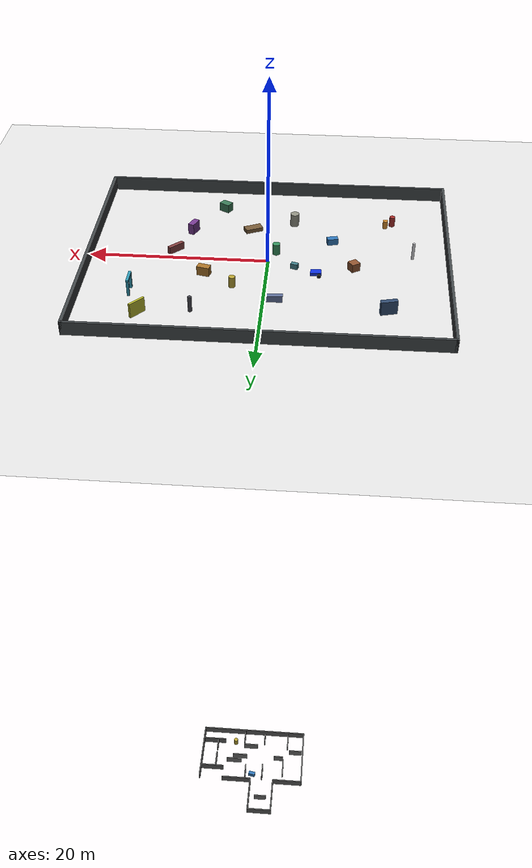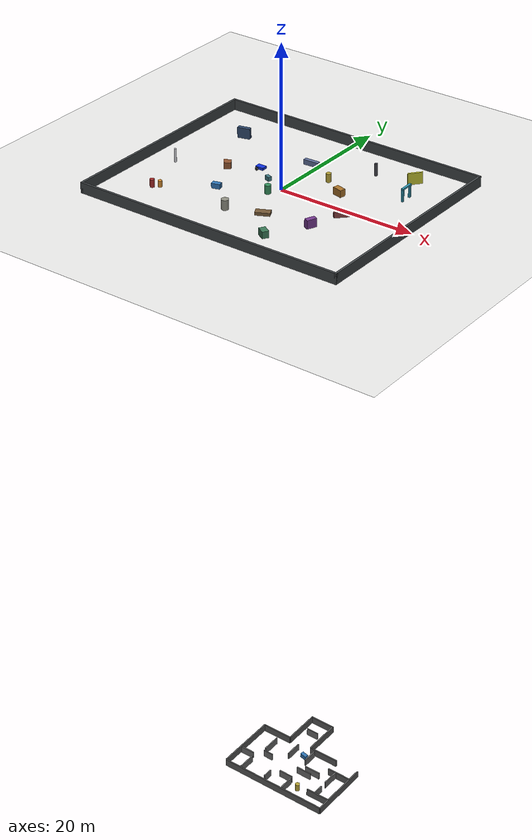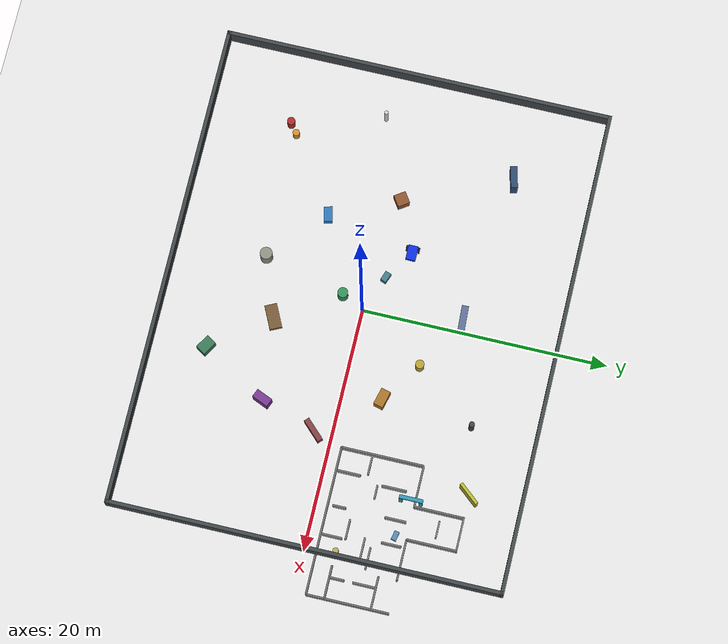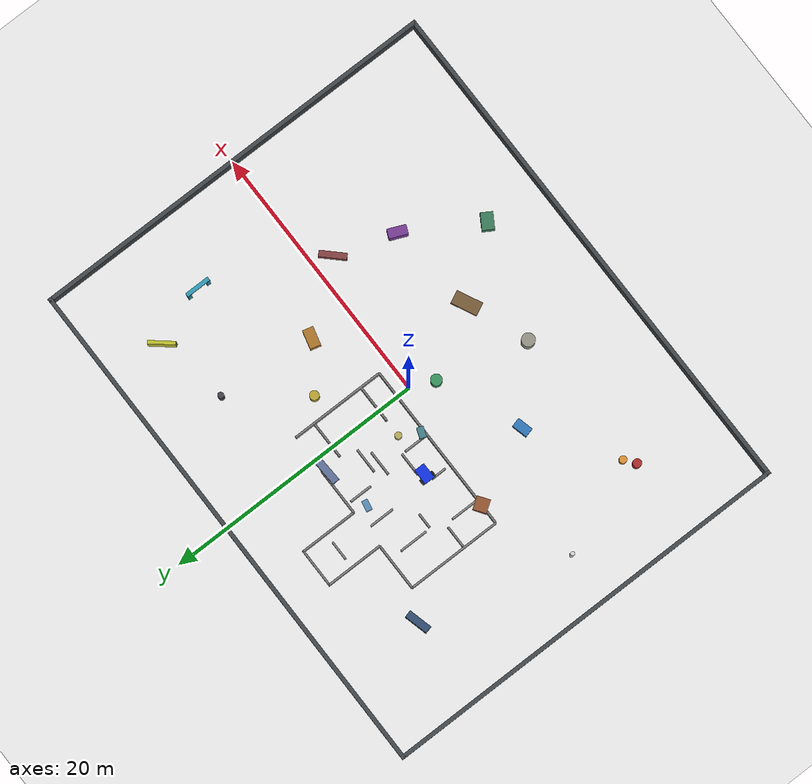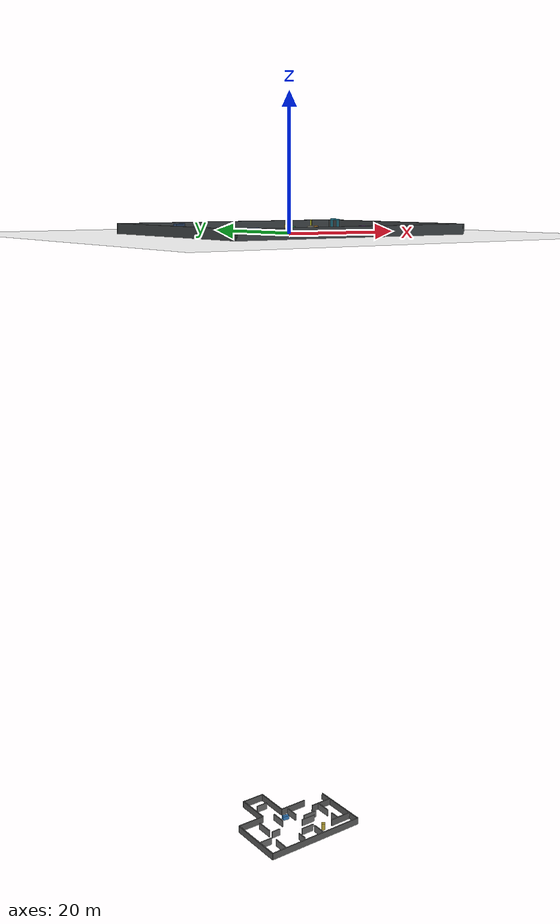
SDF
<?xml version="1.0"?>
<sdf version="1.10">
  <world name="building_slam_world">
    <physics name="1ms" type="ignored">
      <max_step_size>0.001</max_step_size>
      <real_time_factor>1.0</real_time_factor>
    </physics>

    <plugin filename="gz-sim-physics-system" name="gz::sim::systems::Physics"/>
    <plugin filename="gz-sim-user-commands-system" name="gz::sim::systems::UserCommands"/>
    <plugin filename="gz-sim-scene-broadcaster-system" name="gz::sim::systems::SceneBroadcaster"/>
    <plugin filename="gz-sim-sensors-system" name="gz::sim::systems::Sensors">
      <render_engine>ogre2</render_engine>
    </plugin>
    <plugin filename="gz-sim-imu-system" name="gz::sim::systems::Imu"/>

    <light type="directional" name="sun">
      <cast_shadows>true</cast_shadows>
      <pose>0 0 10 0 0 0</pose>
      <diffuse>0.8 0.8 0.8 1</diffuse>
      <specular>0.2 0.2 0.2 1</specular>
      <attenuation>
        <range>1000</range>
        <constant>0.9</constant>
        <linear>0.01</linear>
        <quadratic>0.001</quadratic>
      </attenuation>
      <direction>-0.5 0.1 -0.9</direction>
    </light>

    <model name="ground_plane">
      <static>true</static>
      <link name="link">
        <collision name="collision">
          <geometry>
            <plane>
              <normal>0 0 1</normal>
              <size>40 32</size>
            </plane>
          </geometry>
        </collision>
        <visual name="visual">
          <geometry>
            <plane>
              <normal>0 0 1</normal>
              <size>40 32</size>
            </plane>
          </geometry>
          <material>
            <ambient>0.72 0.74 0.72 1</ambient>
            <diffuse>0.72 0.74 0.72 1</diffuse>
            <specular>0.1 0.1 0.1 1</specular>
          </material>
        </visual>
      </link>
    </model>

    <!-- Perimeter wall enclosing the full environment. -->
    <model name="environment_perimeter_wall">
      <static>true</static>

      <link name="perimeter_north_wall">
        <pose>0 15.85 0.75 0 0 0</pose>
        <collision name="collision"><geometry><box><size>40.0 0.3 1.5</size></box></geometry></collision>
        <visual name="visual"><geometry><box><size>40.0 0.3 1.5</size></box></geometry><material><ambient>0.25 0.27 0.28 1</ambient><diffuse>0.25 0.27 0.28 1</diffuse></material></visual>
      </link>
      <link name="perimeter_south_wall">
        <pose>0 -15.85 0.75 0 0 0</pose>
        <collision name="collision"><geometry><box><size>40.0 0.3 1.5</size></box></geometry></collision>
        <visual name="visual"><geometry><box><size>40.0 0.3 1.5</size></box></geometry><material><ambient>0.25 0.27 0.28 1</ambient><diffuse>0.25 0.27 0.28 1</diffuse></material></visual>
      </link>
      <link name="perimeter_west_wall">
        <pose>-19.85 0 0.75 0 0 0</pose>
        <collision name="collision"><geometry><box><size>0.3 32.0 1.5</size></box></geometry></collision>
        <visual name="visual"><geometry><box><size>0.3 32.0 1.5</size></box></geometry><material><ambient>0.25 0.27 0.28 1</ambient><diffuse>0.25 0.27 0.28 1</diffuse></material></visual>
      </link>
      <link name="perimeter_east_wall">
        <pose>19.85 0 0.75 0 0 0</pose>
        <collision name="collision"><geometry><box><size>0.3 32.0 1.5</size></box></geometry></collision>
        <visual name="visual"><geometry><box><size>0.3 32.0 1.5</size></box></geometry><material><ambient>0.25 0.27 0.28 1</ambient><diffuse>0.25 0.27 0.28 1</diffuse></material></visual>
      </link>
    </model>

    <!-- Dense interior floor plan kept below the floor so only the perimeter bounds the map. -->
    <model name="building_floor_plan">
      <pose>0 0 -100 0 0 0</pose>
      <static>true</static>

      <!-- Outer walls -->
      <link name="north_wall_left">
        <pose>-4.5 5 0.6 0 0 0</pose>
        <collision name="collision"><geometry><box><size>5.0 0.2 1.2</size></box></geometry></collision>
        <visual name="visual"><geometry><box><size>5.0 0.2 1.2</size></box></geometry><material><ambient>0.35 0.35 0.35 1</ambient><diffuse>0.35 0.35 0.35 1</diffuse></material></visual>
      </link>
      <link name="north_wall_right">
        <pose>4.5 5 0.6 0 0 0</pose>
        <collision name="collision"><geometry><box><size>5.0 0.2 1.2</size></box></geometry></collision>
        <visual name="visual"><geometry><box><size>5.0 0.2 1.2</size></box></geometry><material><ambient>0.35 0.35 0.35 1</ambient><diffuse>0.35 0.35 0.35 1</diffuse></material></visual>
      </link>
      <link name="south_wall">
        <pose>2 -5 0.6 0 0 0</pose>
        <collision name="collision"><geometry><box><size>18 0.2 1.2</size></box></geometry></collision>
        <visual name="visual"><geometry><box><size>18 0.2 1.2</size></box></geometry><material><ambient>0.35 0.35 0.35 1</ambient><diffuse>0.35 0.35 0.35 1</diffuse></material></visual>
      </link>
      <link name="west_wall">
        <pose>-7 0 0.6 0 0 0</pose>
        <collision name="collision"><geometry><box><size>0.2 10 1.2</size></box></geometry></collision>
        <visual name="visual"><geometry><box><size>0.2 10 1.2</size></box></geometry><material><ambient>0.35 0.35 0.35 1</ambient><diffuse>0.35 0.35 0.35 1</diffuse></material></visual>
      </link>
      <link name="east_wall">
        <pose>11 0 0.6 0 0 0</pose>
        <collision name="collision"><geometry><box><size>0.2 10 1.2</size></box></geometry></collision>
        <visual name="visual"><geometry><box><size>0.2 10 1.2</size></box></geometry><material><ambient>0.35 0.35 0.35 1</ambient><diffuse>0.35 0.35 0.35 1</diffuse></material></visual>
      </link>
      <link name="north_extension_west_wall">
        <pose>-2.0 8.0 0.6 0 0 0</pose>
        <collision name="collision"><geometry><box><size>0.2 6.0 1.2</size></box></geometry></collision>
        <visual name="visual"><geometry><box><size>0.2 6.0 1.2</size></box></geometry><material><ambient>0.35 0.35 0.35 1</ambient><diffuse>0.35 0.35 0.35 1</diffuse></material></visual>
      </link>
      <link name="north_extension_east_wall">
        <pose>2.0 8.0 0.6 0 0 0</pose>
        <collision name="collision"><geometry><box><size>0.2 6.0 1.2</size></box></geometry></collision>
        <visual name="visual"><geometry><box><size>0.2 6.0 1.2</size></box></geometry><material><ambient>0.35 0.35 0.35 1</ambient><diffuse>0.35 0.35 0.35 1</diffuse></material></visual>
      </link>
      <link name="north_extension_top_wall">
        <pose>0 11 0.6 0 0 0</pose>
        <collision name="collision"><geometry><box><size>4.2 0.2 1.2</size></box></geometry></collision>
        <visual name="visual"><geometry><box><size>4.2 0.2 1.2</size></box></geometry><material><ambient>0.35 0.35 0.35 1</ambient><diffuse>0.35 0.35 0.35 1</diffuse></material></visual>
      </link>
      <link name="east_wing_top_wall">
        <pose>9 2.8 0.6 0 0 0</pose>
        <collision name="collision"><geometry><box><size>4.0 0.2 1.2</size></box></geometry></collision>
        <visual name="visual"><geometry><box><size>4.0 0.2 1.2</size></box></geometry><material><ambient>0.35 0.35 0.35 1</ambient><diffuse>0.35 0.35 0.35 1</diffuse></material></visual>
      </link>
      <link name="east_wing_bottom_wall">
        <pose>9 -2.8 0.6 0 0 0</pose>
        <collision name="collision"><geometry><box><size>4.0 0.2 1.2</size></box></geometry></collision>
        <visual name="visual"><geometry><box><size>4.0 0.2 1.2</size></box></geometry><material><ambient>0.35 0.35 0.35 1</ambient><diffuse>0.35 0.35 0.35 1</diffuse></material></visual>
      </link>

      <!-- Interior rooms and corridors -->
      <link name="left_vertical_room_wall">
        <pose>-3.6 2.2 0.6 0 0 0</pose>
        <collision name="collision"><geometry><box><size>0.18 3.0 1.2</size></box></geometry></collision>
        <visual name="visual"><geometry><box><size>0.18 3.0 1.2</size></box></geometry><material><ambient>0.42 0.42 0.42 1</ambient><diffuse>0.42 0.42 0.42 1</diffuse></material></visual>
      </link>
      <link name="left_room_bottom_wall">
        <pose>-5.7 -1.2 0.6 0 0 0</pose>
        <collision name="collision"><geometry><box><size>2.3 0.18 1.2</size></box></geometry></collision>
        <visual name="visual"><geometry><box><size>2.3 0.18 1.2</size></box></geometry><material><ambient>0.42 0.42 0.42 1</ambient><diffuse>0.42 0.42 0.42 1</diffuse></material></visual>
      </link>
      <link name="center_vertical_wall_upper">
        <pose>0.0 3.2 0.6 0 0 0</pose>
        <collision name="collision"><geometry><box><size>0.18 2.6 1.2</size></box></geometry></collision>
        <visual name="visual"><geometry><box><size>0.18 2.6 1.2</size></box></geometry><material><ambient>0.42 0.42 0.42 1</ambient><diffuse>0.42 0.42 0.42 1</diffuse></material></visual>
      </link>
      <link name="center_vertical_wall_lower">
        <pose>0.0 -3.6 0.6 0 0 0</pose>
        <collision name="collision"><geometry><box><size>0.18 1.6 1.2</size></box></geometry></collision>
        <visual name="visual"><geometry><box><size>0.18 1.6 1.2</size></box></geometry><material><ambient>0.42 0.42 0.42 1</ambient><diffuse>0.42 0.42 0.42 1</diffuse></material></visual>
      </link>
      <link name="middle_horizontal_wall_left">
        <pose>-2.7 0.2 0.6 0 0 0</pose>
        <collision name="collision"><geometry><box><size>1.6 0.18 1.2</size></box></geometry></collision>
        <visual name="visual"><geometry><box><size>1.6 0.18 1.2</size></box></geometry><material><ambient>0.42 0.42 0.42 1</ambient><diffuse>0.42 0.42 0.42 1</diffuse></material></visual>
      </link>
      <link name="middle_horizontal_wall_right">
        <pose>4.2 0.2 0.6 0 0 0</pose>
        <collision name="collision"><geometry><box><size>2.6 0.18 1.2</size></box></geometry></collision>
        <visual name="visual"><geometry><box><size>2.6 0.18 1.2</size></box></geometry><material><ambient>0.42 0.42 0.42 1</ambient><diffuse>0.42 0.42 0.42 1</diffuse></material></visual>
      </link>
      <link name="right_room_wall">
        <pose>3.0 3.4 0.6 0 0 0</pose>
        <collision name="collision"><geometry><box><size>0.18 2.4 1.2</size></box></geometry></collision>
        <visual name="visual"><geometry><box><size>0.18 2.4 1.2</size></box></geometry><material><ambient>0.42 0.42 0.42 1</ambient><diffuse>0.42 0.42 0.42 1</diffuse></material></visual>
      </link>
      <link name="right_room_bottom_wall">
        <pose>5.2 1.1 0.6 0 0 0</pose>
        <collision name="collision"><geometry><box><size>2.6 0.18 1.2</size></box></geometry></collision>
        <visual name="visual"><geometry><box><size>2.6 0.18 1.2</size></box></geometry><material><ambient>0.42 0.42 0.42 1</ambient><diffuse>0.42 0.42 0.42 1</diffuse></material></visual>
      </link>
      <link name="east_wing_divider_top">
        <pose>8.4 1.4 0.6 0 0 0</pose>
        <collision name="collision"><geometry><box><size>0.18 2.8 1.2</size></box></geometry></collision>
        <visual name="visual"><geometry><box><size>0.18 2.8 1.2</size></box></geometry><material><ambient>0.42 0.42 0.42 1</ambient><diffuse>0.42 0.42 0.42 1</diffuse></material></visual>
      </link>
      <link name="east_wing_divider_bottom">
        <pose>8.4 -1.9 0.6 0 0 0</pose>
        <collision name="collision"><geometry><box><size>0.18 1.8 1.2</size></box></geometry></collision>
        <visual name="visual"><geometry><box><size>0.18 1.8 1.2</size></box></geometry><material><ambient>0.42 0.42 0.42 1</ambient><diffuse>0.42 0.42 0.42 1</diffuse></material></visual>
      </link>
      <link name="north_extension_room_wall">
        <pose>0 8.3 0.6 0 0 0</pose>
        <collision name="collision"><geometry><box><size>2.0 0.18 1.2</size></box></geometry></collision>
        <visual name="visual"><geometry><box><size>2.0 0.18 1.2</size></box></geometry><material><ambient>0.42 0.42 0.42 1</ambient><diffuse>0.42 0.42 0.42 1</diffuse></material></visual>
      </link>
      <link name="bottom_room_wall_left">
        <pose>-4.2 -3.4 0.6 0 0 0</pose>
        <collision name="collision"><geometry><box><size>0.18 2.8 1.2</size></box></geometry></collision>
        <visual name="visual"><geometry><box><size>0.18 2.8 1.2</size></box></geometry><material><ambient>0.42 0.42 0.42 1</ambient><diffuse>0.42 0.42 0.42 1</diffuse></material></visual>
      </link>
      <link name="bottom_room_wall_right">
        <pose>3.6 -3.6 0.6 0 0 0</pose>
        <collision name="collision"><geometry><box><size>0.18 2.4 1.2</size></box></geometry></collision>
        <visual name="visual"><geometry><box><size>0.18 2.4 1.2</size></box></geometry><material><ambient>0.42 0.42 0.42 1</ambient><diffuse>0.42 0.42 0.42 1</diffuse></material></visual>
      </link>
      <link name="bottom_corridor_wall">
        <pose>2.4 -2.0 0.6 0 0 0</pose>
        <collision name="collision"><geometry><box><size>2.4 0.18 1.2</size></box></geometry></collision>
        <visual name="visual"><geometry><box><size>2.4 0.18 1.2</size></box></geometry><material><ambient>0.42 0.42 0.42 1</ambient><diffuse>0.42 0.42 0.42 1</diffuse></material></visual>
      </link>

      <!-- Furniture-like obstacles for richer lidar features -->
      <link name="table_block_b">
        <pose>1.8 3.6 0.35 0 0 -0.2</pose>
        <collision name="collision"><geometry><box><size>1.1 0.6 0.7</size></box></geometry></collision>
        <visual name="visual"><geometry><box><size>1.1 0.6 0.7</size></box></geometry><material><ambient>0.18 0.45 0.7 1</ambient><diffuse>0.18 0.45 0.7 1</diffuse></material></visual>
      </link>
      <link name="pillar_a">
        <pose>5.2 -2.8 0.6 0 0 0</pose>
        <collision name="collision"><geometry><cylinder><radius>0.35</radius><length>1.2</length></cylinder></geometry></collision>
        <visual name="visual"><geometry><cylinder><radius>0.35</radius><length>1.2</length></cylinder></geometry><material><ambient>0.7 0.62 0.2 1</ambient><diffuse>0.7 0.62 0.2 1</diffuse></material></visual>
      </link>
    </model>

    <!-- Sparse non-wall landmarks for SLAM scan-matching in the open perimeter. -->
    <model name="sparse_slam_landmarks">
      <static>true</static>
      <link name="low_table">
        <pose>-7.0 -4.5 0.35 0 0 0.25</pose>
        <collision name="collision"><geometry><box><size>1.2 0.7 0.7</size></box></geometry></collision>
        <visual name="visual"><geometry><box><size>1.2 0.7 0.7</size></box></geometry><material><ambient>0.18 0.45 0.7 1</ambient><diffuse>0.18 0.45 0.7 1</diffuse></material></visual>
      </link>
      <link name="pillar_west">
        <pose>3.5 5.5 0.6 0 0 0</pose>
        <collision name="collision"><geometry><cylinder><radius>0.35</radius><length>1.2</length></cylinder></geometry></collision>
        <visual name="visual"><geometry><cylinder><radius>0.35</radius><length>1.2</length></cylinder></geometry><material><ambient>0.7 0.62 0.2 1</ambient><diffuse>0.7 0.62 0.2 1</diffuse></material></visual>
      </link>
      <link name="tall_marker">
        <pose>9.0 -6.0 0.6 0 0 -0.4</pose>
        <collision name="collision"><geometry><box><size>0.7 1.4 1.2</size></box></geometry></collision>
        <visual name="visual"><geometry><box><size>0.7 1.4 1.2</size></box></geometry><material><ambient>0.45 0.22 0.55 1</ambient><diffuse>0.45 0.22 0.55 1</diffuse></material></visual>
      </link>
      <link name="crate_cluster_west">
        <pose>-9.5 1.0 0.45 0 0 0.6</pose>
        <collision name="collision"><geometry><box><size>1.0 1.0 0.9</size></box></geometry></collision>
        <visual name="visual"><geometry><box><size>1.0 1.0 0.9</size></box></geometry><material><ambient>0.55 0.32 0.18 1</ambient><diffuse>0.55 0.32 0.18 1</diffuse></material></visual>
      </link>
      <link name="pillar_center">
        <pose>-0.8 -1.8 0.6 0 0 0</pose>
        <collision name="collision"><geometry><cylinder><radius>0.42</radius><length>1.2</length></cylinder></geometry></collision>
        <visual name="visual"><geometry><cylinder><radius>0.42</radius><length>1.2</length></cylinder></geometry><material><ambient>0.2 0.55 0.35 1</ambient><diffuse>0.2 0.55 0.35 1</diffuse></material></visual>
      </link>
      <link name="bench_north">
        <pose>-1.0 8.0 0.35 0 0 0.05</pose>
        <collision name="collision"><geometry><box><size>2.2 0.55 0.7</size></box></geometry></collision>
        <visual name="visual"><geometry><box><size>2.2 0.55 0.7</size></box></geometry><material><ambient>0.36 0.42 0.58 1</ambient><diffuse>0.36 0.42 0.58 1</diffuse></material></visual>
      </link>
      <link name="crate_east">
        <pose>6.8 3.2 0.5 0 0 -0.25</pose>
        <collision name="collision"><geometry><box><size>1.4 0.8 1.0</size></box></geometry></collision>
        <visual name="visual"><geometry><box><size>1.4 0.8 1.0</size></box></geometry><material><ambient>0.65 0.44 0.16 1</ambient><diffuse>0.65 0.44 0.16 1</diffuse></material></visual>
      </link>
      <link name="round_column_south">
        <pose>-2.5 -8.5 0.7 0 0 0</pose>
        <collision name="collision"><geometry><cylinder><radius>0.5</radius><length>1.4</length></cylinder></geometry></collision>
        <visual name="visual"><geometry><cylinder><radius>0.5</radius><length>1.4</length></cylinder></geometry><material><ambient>0.55 0.55 0.50 1</ambient><diffuse>0.55 0.55 0.50 1</diffuse></material></visual>
      </link>
      <link name="angled_barrier_southeast">
        <pose>10.5 -1.5 0.4 0 0 0.8</pose>
        <collision name="collision"><geometry><box><size>2.0 0.45 0.8</size></box></geometry></collision>
        <visual name="visual"><geometry><box><size>2.0 0.45 0.8</size></box></geometry><material><ambient>0.5 0.24 0.24 1</ambient><diffuse>0.5 0.24 0.24 1</diffuse></material></visual>
      </link>
      <link name="short_block_near_start">
        <pose>-3.0 1.2 0.3 0 0 -0.35</pose>
        <collision name="collision"><geometry><box><size>0.8 0.5 0.6</size></box></geometry></collision>
        <visual name="visual"><geometry><box><size>0.8 0.5 0.6</size></box></geometry><material><ambient>0.25 0.48 0.52 1</ambient><diffuse>0.25 0.48 0.52 1</diffuse></material></visual>
      </link>
      <link name="equipment_rack_northwest">
        <pose>-13.2 9.4 0.75 0 0 0.25</pose>
        <collision name="collision"><geometry><box><size>1.8 0.55 1.5</size></box></geometry></collision>
        <visual name="visual"><geometry><box><size>1.8 0.55 1.5</size></box></geometry><material><ambient>0.18 0.28 0.42 1</ambient><diffuse>0.18 0.28 0.42 1</diffuse></material></visual>
      </link>
      <link name="barrel_pair_southwest_a">
        <pose>-13.8 -9.2 0.55 0 0 0</pose>
        <collision name="collision"><geometry><cylinder><radius>0.32</radius><length>1.1</length></cylinder></geometry></collision>
        <visual name="visual"><geometry><cylinder><radius>0.32</radius><length>1.1</length></cylinder></geometry><material><ambient>0.64 0.17 0.16 1</ambient><diffuse>0.64 0.17 0.16 1</diffuse></material></visual>
      </link>
      <link name="barrel_pair_southwest_b">
        <pose>-13.0 -8.6 0.45 0 0 0</pose>
        <collision name="collision"><geometry><cylinder><radius>0.28</radius><length>0.9</length></cylinder></geometry></collision>
        <visual name="visual"><geometry><cylinder><radius>0.28</radius><length>0.9</length></cylinder></geometry><material><ambient>0.82 0.54 0.18 1</ambient><diffuse>0.82 0.54 0.18 1</diffuse></material></visual>
      </link>
      <link name="inspection_gate_east_left">
        <pose>14.3 6.5 0.9 0 0 0</pose>
        <collision name="collision"><geometry><box><size>0.28 0.28 1.8</size></box></geometry></collision>
        <visual name="visual"><geometry><box><size>0.28 0.28 1.8</size></box></geometry><material><ambient>0.18 0.58 0.68 1</ambient><diffuse>0.18 0.58 0.68 1</diffuse></material></visual>
      </link>
      <link name="inspection_gate_east_right">
        <pose>14.3 8.1 0.9 0 0 0</pose>
        <collision name="collision"><geometry><box><size>0.28 0.28 1.8</size></box></geometry></collision>
        <visual name="visual"><geometry><box><size>0.28 0.28 1.8</size></box></geometry><material><ambient>0.18 0.58 0.68 1</ambient><diffuse>0.18 0.58 0.68 1</diffuse></material></visual>
      </link>
      <link name="inspection_gate_east_top">
        <pose>14.3 7.3 1.75 0 0 0</pose>
        <collision name="collision"><geometry><box><size>0.3 1.9 0.22</size></box></geometry></collision>
        <visual name="visual"><geometry><box><size>0.3 1.9 0.22</size></box></geometry><material><ambient>0.18 0.58 0.68 1</ambient><diffuse>0.18 0.58 0.68 1</diffuse></material></visual>
      </link>
      <link name="low_pallets_center">
        <pose>2.2 -6.8 0.22 0 0 0.45</pose>
        <collision name="collision"><geometry><box><size>2.0 1.0 0.44</size></box></geometry></collision>
        <visual name="visual"><geometry><box><size>2.0 1.0 0.44</size></box></geometry><material><ambient>0.45 0.34 0.21 1</ambient><diffuse>0.45 0.34 0.21 1</diffuse></material></visual>
      </link>
      <link name="sensor_tripod_north">
        <pose>7.4 10.6 0.85 0 0 -0.15</pose>
        <collision name="collision"><geometry><cylinder><radius>0.22</radius><length>1.7</length></cylinder></geometry></collision>
        <visual name="visual"><geometry><cylinder><radius>0.22</radius><length>1.7</length></cylinder></geometry><material><ambient>0.25 0.25 0.28 1</ambient><diffuse>0.25 0.25 0.28 1</diffuse></material></visual>
      </link>
      <link name="bright_panel_northeast">
        <pose>12.8 11.6 0.8 0 0 -0.7</pose>
        <collision name="collision"><geometry><box><size>0.25 2.0 1.6</size></box></geometry></collision>
        <visual name="visual"><geometry><box><size>0.25 2.0 1.6</size></box></geometry><material><ambient>0.72 0.72 0.18 1</ambient><diffuse>0.72 0.72 0.18 1</diffuse></material></visual>
      </link>
      <link name="offset_crate_south">
        <pose>5.8 -11.4 0.48 0 0 -0.55</pose>
        <collision name="collision"><geometry><box><size>1.25 0.9 0.95</size></box></geometry></collision>
        <visual name="visual"><geometry><box><size>1.25 0.9 0.95</size></box></geometry><material><ambient>0.22 0.46 0.33 1</ambient><diffuse>0.22 0.46 0.33 1</diffuse></material></visual>
      </link>
      <link name="slender_marker_west">
        <pose>-16.0 -1.8 0.95 0 0 0</pose>
        <collision name="collision"><geometry><cylinder><radius>0.16</radius><length>1.9</length></cylinder></geometry></collision>
        <visual name="visual"><geometry><cylinder><radius>0.16</radius><length>1.9</length></cylinder></geometry><material><ambient>0.8 0.8 0.82 1</ambient><diffuse>0.8 0.8 0.82 1</diffuse></material></visual>
      </link>
    </model>

    <model name="vehicle_blue" canonical_link="chassis">
      <pose>-5.4 2.8 0.12 0 0 0</pose>

      <link name="chassis">
        <pose relative_to="__model__">0 0 0.38 0 0 0</pose>
        <inertial>
          <mass>4.0</mass>
          <inertia>
            <ixx>0.15</ixx>
            <ixy>0</ixy>
            <ixz>0</ixz>
            <iyy>0.35</iyy>
            <iyz>0</iyz>
            <izz>0.45</izz>
          </inertia>
        </inertial>
        <collision name="collision">
          <geometry>
            <box>
              <size>1.2 0.8 0.35</size>
            </box>
          </geometry>
        </collision>
        <visual name="visual">
          <geometry>
            <box>
              <size>1.2 0.8 0.35</size>
            </box>
          </geometry>
          <material>
            <ambient>0.05 0.18 0.85 1</ambient>
            <diffuse>0.05 0.18 0.85 1</diffuse>
          </material>
        </visual>
        <sensor name="gpu_3d_lidar" type="gpu_lidar">
          <pose>0.45 0 0.32 0 0 0</pose>
          <topic>/points_raw</topic>
          <update_rate>15</update_rate>
          <ray>
            <scan>
              <horizontal>
                <samples>1024</samples>
                <resolution>1</resolution>
                <min_angle>-3.14159</min_angle>
                <max_angle>3.14159</max_angle>
              </horizontal>
              <vertical>
                <samples>16</samples>
                <resolution>1</resolution>
                <min_angle>-0.261799</min_angle>
                <max_angle>0.261799</max_angle>
              </vertical>
            </scan>
            <range>
              <min>0.08</min>
              <max>12.0</max>
              <resolution>0.01</resolution>
            </range>
          </ray>
          <always_on>1</always_on>
          <visualize>true</visualize>
        </sensor>
        <sensor name="front_camera" type="camera">
          <pose>0.68 0 0.36 0 0 0</pose>
          <topic>/front_camera/image</topic>
          <update_rate>60</update_rate>
          <camera>
            <horizontal_fov>1.3962634</horizontal_fov>
            <image>
              <width>1920</width>
              <height>1080</height>
              <format>R8G8B8</format>
            </image>
            <clip>
              <near>0.05</near>
              <far>100.0</far>
            </clip>
          </camera>
          <always_on>1</always_on>
          <visualize>true</visualize>
        </sensor>
        <sensor name="imu_sensor" type="imu">
          <pose>0 0 0 0 0 0</pose>
          <topic>/imu</topic>
          <update_rate>100</update_rate>
          <always_on>1</always_on>
        </sensor>
      </link>

      <link name="left_wheel">
        <pose relative_to="chassis">-0.35 0.48 -0.14 -1.5707 0 0</pose>
        <inertial>
          <mass>0.5</mass>
          <inertia>
            <ixx>0.02</ixx><ixy>0</ixy><ixz>0</ixz>
            <iyy>0.02</iyy><iyz>0</iyz><izz>0.03</izz>
          </inertia>
        </inertial>
        <collision name="collision"><geometry><cylinder><radius>0.24</radius><length>0.14</length></cylinder></geometry></collision>
        <visual name="visual"><geometry><cylinder><radius>0.24</radius><length>0.14</length></cylinder></geometry><material><ambient>0.1 0.1 0.1 1</ambient><diffuse>0.1 0.1 0.1 1</diffuse></material></visual>
      </link>

      <link name="right_wheel">
        <pose relative_to="chassis">-0.35 -0.48 -0.14 -1.5707 0 0</pose>
        <inertial>
          <mass>0.5</mass>
          <inertia>
            <ixx>0.02</ixx><ixy>0</ixy><ixz>0</ixz>
            <iyy>0.02</iyy><iyz>0</iyz><izz>0.03</izz>
          </inertia>
        </inertial>
        <collision name="collision"><geometry><cylinder><radius>0.24</radius><length>0.14</length></cylinder></geometry></collision>
        <visual name="visual"><geometry><cylinder><radius>0.24</radius><length>0.14</length></cylinder></geometry><material><ambient>0.1 0.1 0.1 1</ambient><diffuse>0.1 0.1 0.1 1</diffuse></material></visual>
      </link>

      <link name="caster">
        <pose relative_to="chassis">0.42 0 -0.18 0 0 0</pose>
        <inertial>
          <mass>0.2</mass>
          <inertia>
            <ixx>0.004</ixx><ixy>0</ixy><ixz>0</ixz>
            <iyy>0.004</iyy><iyz>0</iyz><izz>0.004</izz>
          </inertia>
        </inertial>
        <collision name="collision"><geometry><sphere><radius>0.12</radius></sphere></geometry></collision>
        <visual name="visual"><geometry><sphere><radius>0.12</radius></sphere></geometry><material><ambient>0.1 0.5 0.1 1</ambient><diffuse>0.1 0.5 0.1 1</diffuse></material></visual>
      </link>

      <joint name="left_wheel_joint" type="revolute">
        <pose relative_to="left_wheel"/>
        <parent>chassis</parent>
        <child>left_wheel</child>
        <axis>
          <xyz expressed_in="__model__">0 1 0</xyz>
          <limit>
            <lower>-1.79769e+308</lower>
            <upper>1.79769e+308</upper>
          </limit>
        </axis>
      </joint>

      <joint name="right_wheel_joint" type="revolute">
        <pose relative_to="right_wheel"/>
        <parent>chassis</parent>
        <child>right_wheel</child>
        <axis>
          <xyz expressed_in="__model__">0 1 0</xyz>
          <limit>
            <lower>-1.79769e+308</lower>
            <upper>1.79769e+308</upper>
          </limit>
        </axis>
      </joint>

      <joint name="caster_joint" type="ball">
        <parent>chassis</parent>
        <child>caster</child>
      </joint>

      <plugin filename="gz-sim-diff-drive-system" name="gz::sim::systems::DiffDrive">
        <left_joint>left_wheel_joint</left_joint>
        <right_joint>right_wheel_joint</right_joint>
        <wheel_separation>0.96</wheel_separation>
        <wheel_radius>0.24</wheel_radius>
        <odom_publish_frequency>50</odom_publish_frequency>
        <odom_topic>/odom</odom_topic>
        <frame_id>odom</frame_id>
        <child_frame_id>chassis</child_frame_id>
        <topic>/cmd_vel</topic>
      </plugin>
    </model>
  </world>
</sdf>
